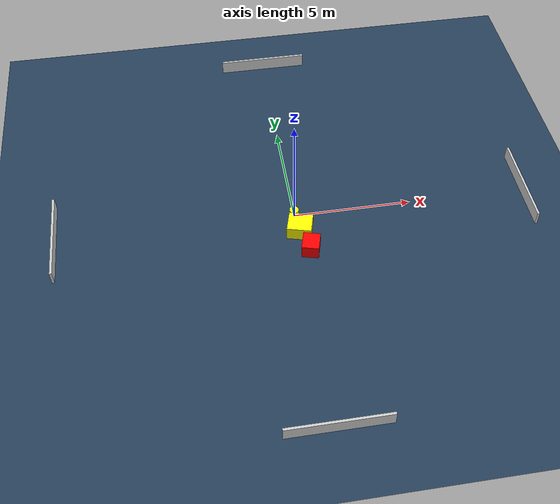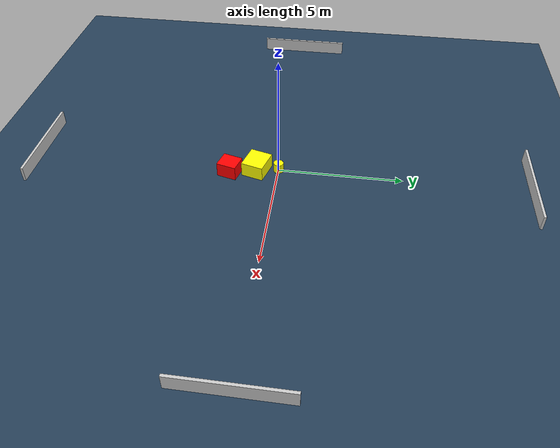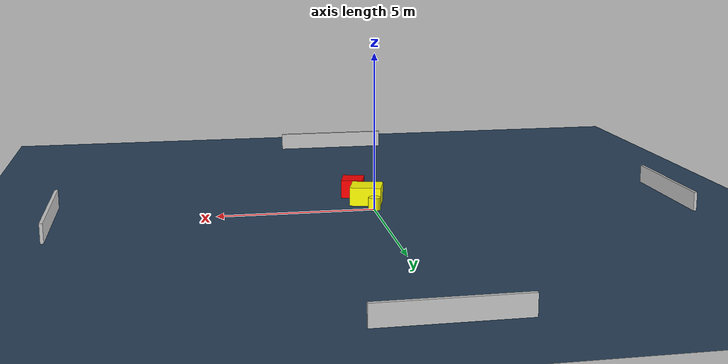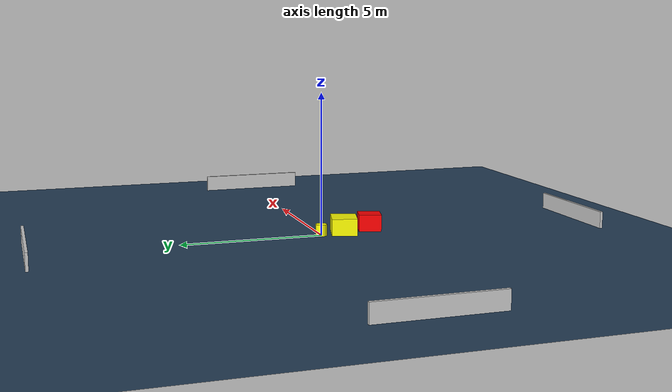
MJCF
<?xml version="1.0" ?>
<mujoco model="generated_environment">
  <option timestep="0.01" integrator="RK4" cone="elliptic"/>
  <default>
    <geom density="1"/>
  </default>
  <asset>
    <texture builtin="gradient" height="3072" name="skybox" rgb1="0.3 0.5 0.7" rgb2="0 0 0" type="skybox" width="512"/>
    <texture builtin="checker" height="300" name="groundplane" rgb1="0.2 0.3 0.4" rgb2="0.1 0.2 0.3" type="2d" width="300"/>
    <material name="groundplane" reflectance="0.2" texrepeat="5 5" texture="groundplane"/>
  </asset>
  <worldbody>
    <light dir="0 0 -1" directional="true" pos="0 0 1.5"/>
    <geom condim="3" friction="0.5 0.005 0.001" material="groundplane" name="floor" pos="0 0 0" size="0 0 0.05" type="plane"/>
    <body name="walls">
      <geom name="wall_1" condim="4" pos="-10.0 0.0 0.3" rgba="0.800000011920929 0.800000011920929 0.800000011920929 1.0" size="0.05 2.0 0.3" type="box"/>
      <geom name="wall_2" condim="4" pos="10.0 0.0 0.3" rgba="0.800000011920929 0.800000011920929 0.800000011920929 1.0" size="0.05 2.0 0.3" type="box"/>
      <geom name="wall_3" condim="4" pos="0.0 -10.0 0.3" rgba="0.800000011920929 0.800000011920929 0.800000011920929 1.0" size="2.0 0.05 0.3" type="box"/>
      <geom name="wall_4" condim="4" pos="0.0 10.0 0.3" rgba="0.800000011920929 0.800000011920929 0.800000011920929 1.0" size="2.0 0.05 0.3" type="box"/>
    </body>
    <body name="robot">
      <joint name="joint_x" type="slide" pos="0 0 0" axis="1 0 0"/>
      <joint name="joint_y" type="slide" pos="0 0 0" axis="0 1 0"/>
      <geom name="robot" type="cylinder" pos="0.0 0.0 0.2" size="0.2 0.2 0.0" mass="5.0" friction="1.0 0.005 0.0001" condim="4" rgba="1.0 1.0 0.0 1.0"/>
    </body>
    <body name="obstacle_1_movable">
      <geom name="obstacle_1_movable" condim="4" pos="0.11016660416485172 -0.8744042845761428 0.3" euler="0 0 254.68415293370367" friction="0.0 0.005 0.001" rgba="1.0 1.0 0.0 1.0" size="0.45212513580618185 0.5039170583092152 0.3" type="box" mass="0.1"/>
      <joint type="free"/>
    </body>
    <body name="obstacle_2_static">
      <geom name="obstacle_2_static" condim="4" pos="0.38984973876245754 -1.9383008962728707 0.3" euler="0 0 345.1557942462029" friction="0.0 0.005 0.001" rgba="1.0 0.0 0.0 1.0" size="0.35466584431110415 0.4017346022827135 0.3" type="box"/>
    </body>
  </worldbody>
  <actuator>
    <motor name="actuator_x" joint="joint_x" gear="1" ctrlrange="-1 1"/>
    <motor name="actuator_y" joint="joint_y" gear="1" ctrlrange="-1 1"/>
  </actuator>
</mujoco>
